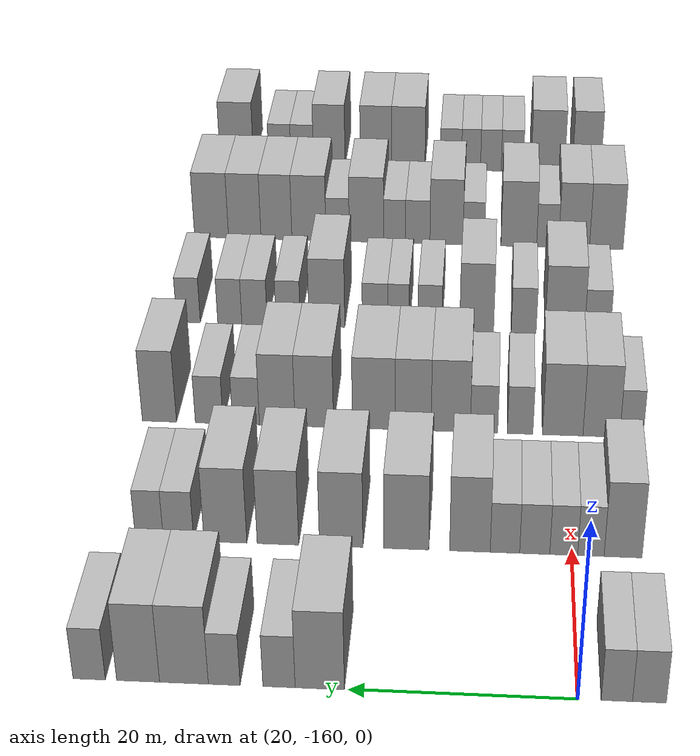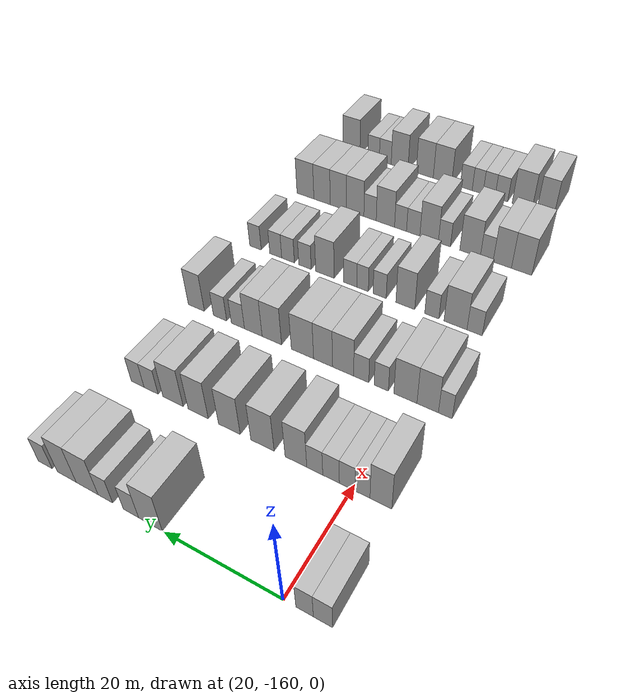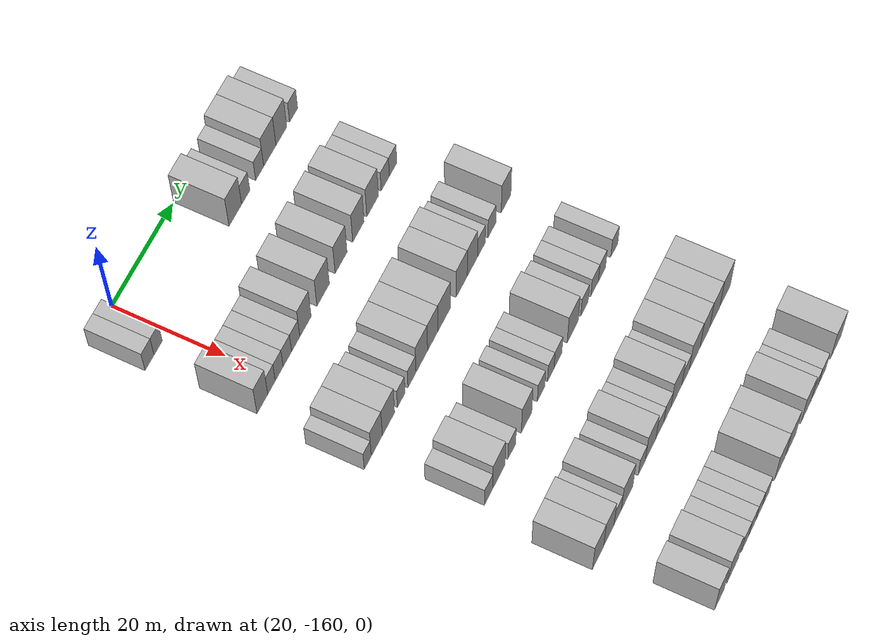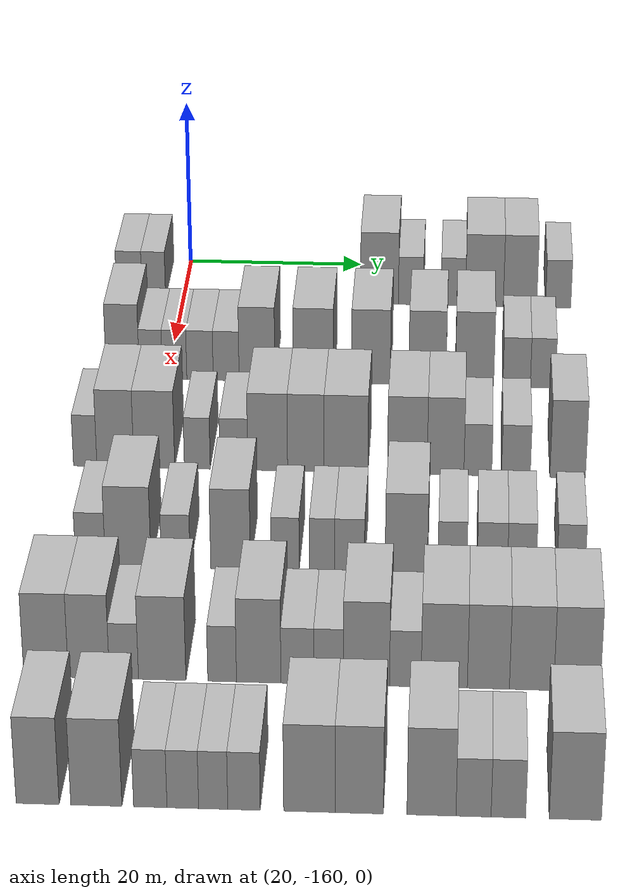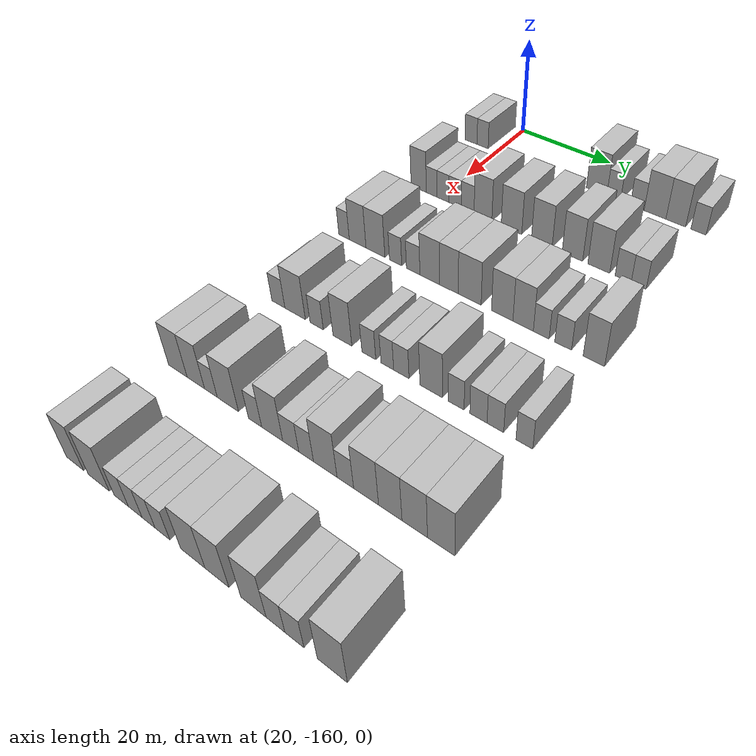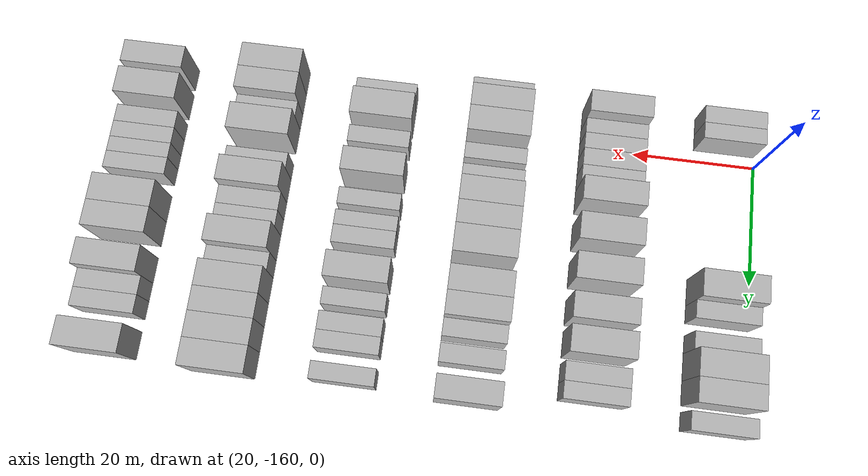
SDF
<sdf version="1.6">
 <world name="default">
  <model name="building_49">
   <static>1</static>
   <pose>25.0000 -166.1725 0 0.000000 0.000000 0.000000</pose>
   <link name="link">
    <pose>0 0 3.00 0 0 0</pose>
    <collision name="collision"><geometry><box><size>10.0000 2.9162 6.0000</size></box></geometry></collision>
    <visual name="visual">
     <cast_shadows>0</cast_shadows>
     <geometry><box><size>10.0000 2.9162 6.0000</size></box></geometry>
     <material>
      <script>
       <uri>model://HANNAS_wall/materials/scripts</uri>
       <uri>model://HANNAS_wall/materials/textures</uri>
       <name>vrc/HANNAS_wall</name>
      </script>
     </material>
    </visual>
   </link>
  </model>
  <model name="building_50">
   <static>1</static>
   <pose>25.0000 -163.3622 0 0.000000 0.000000 0.000000</pose>
   <link name="link">
    <pose>0 0 3.00 0 0 0</pose>
    <collision name="collision"><geometry><box><size>10.0000 2.7045 6.0000</size></box></geometry></collision>
    <visual name="visual">
     <cast_shadows>0</cast_shadows>
     <geometry><box><size>10.0000 2.7045 6.0000</size></box></geometry>
     <material>
      <script>
       <uri>model://HANNAS_wall/materials/scripts</uri>
       <uri>model://HANNAS_wall/materials/textures</uri>
       <name>vrc/HANNAS_wall</name>
      </script>
     </material>
    </visual>
   </link>
  </model>
  <model name="building_51">
   <static>1</static>
   <pose>25.0000 -137.5304 0 0.000000 0.000000 0.000000</pose>
   <link name="link">
    <pose>0 0 4.50 0 0 0</pose>
    <collision name="collision"><geometry><box><size>10.0000 4.3197 9.0000</size></box></geometry></collision>
    <visual name="visual">
     <cast_shadows>0</cast_shadows>
     <geometry><box><size>10.0000 4.3197 9.0000</size></box></geometry>
     <material>
      <script>
       <uri>model://HANNAS_wall/materials/scripts</uri>
       <uri>model://HANNAS_wall/materials/textures</uri>
       <name>vrc/HANNAS_wall</name>
      </script>
     </material>
    </visual>
   </link>
  </model>
  <model name="building_52">
   <static>1</static>
   <pose>25.0000 -133.9531 0 0.000000 0.000000 0.000000</pose>
   <link name="link">
    <pose>0 0 3.00 0 0 0</pose>
    <collision name="collision"><geometry><box><size>10.0000 2.8350 6.0000</size></box></geometry></collision>
    <visual name="visual">
     <cast_shadows>0</cast_shadows>
     <geometry><box><size>10.0000 2.8350 6.0000</size></box></geometry>
     <material>
      <script>
       <uri>model://HANNAS_wall/materials/scripts</uri>
       <uri>model://HANNAS_wall/materials/textures</uri>
       <name>vrc/HANNAS_wall</name>
      </script>
     </material>
    </visual>
   </link>
  </model>
  <model name="building_53">
   <static>1</static>
   <pose>25.0000 -129.1353 0 0.000000 0.000000 0.000000</pose>
   <link name="link">
    <pose>0 0 3.00 0 0 0</pose>
    <collision name="collision"><geometry><box><size>10.0000 2.8005 6.0000</size></box></geometry></collision>
    <visual name="visual">
     <cast_shadows>0</cast_shadows>
     <geometry><box><size>10.0000 2.8005 6.0000</size></box></geometry>
     <material>
      <script>
       <uri>model://HANNAS_wall/materials/scripts</uri>
       <uri>model://HANNAS_wall/materials/textures</uri>
       <name>vrc/HANNAS_wall</name>
      </script>
     </material>
    </visual>
   </link>
  </model>
  <model name="building_54">
   <static>1</static>
   <pose>25.0000 -125.5844 0 0.000000 0.000000 0.000000</pose>
   <link name="link">
    <pose>0 0 4.50 0 0 0</pose>
    <collision name="collision"><geometry><box><size>10.0000 4.3012 9.0000</size></box></geometry></collision>
    <visual name="visual">
     <cast_shadows>0</cast_shadows>
     <geometry><box><size>10.0000 4.3012 9.0000</size></box></geometry>
     <material>
      <script>
       <uri>model://HANNAS_wall/materials/scripts</uri>
       <uri>model://HANNAS_wall/materials/textures</uri>
       <name>vrc/HANNAS_wall</name>
      </script>
     </material>
    </visual>
   </link>
  </model>
  <model name="building_55">
   <static>1</static>
   <pose>25.0000 -121.5338 0 0.000000 0.000000 0.000000</pose>
   <link name="link">
    <pose>0 0 4.50 0 0 0</pose>
    <collision name="collision"><geometry><box><size>10.0000 3.8001 9.0000</size></box></geometry></collision>
    <visual name="visual">
     <cast_shadows>0</cast_shadows>
     <geometry><box><size>10.0000 3.8001 9.0000</size></box></geometry>
     <material>
      <script>
       <uri>model://HANNAS_wall/materials/scripts</uri>
       <uri>model://HANNAS_wall/materials/textures</uri>
       <name>vrc/HANNAS_wall</name>
      </script>
     </material>
    </visual>
   </link>
  </model>
  <model name="building_56">
   <static>1</static>
   <pose>25.0000 -117.2014 0 0.000000 0.000000 0.000000</pose>
   <link name="link">
    <pose>0 0 3.00 0 0 0</pose>
    <collision name="collision"><geometry><box><size>10.0000 2.8646 6.0000</size></box></geometry></collision>
    <visual name="visual">
     <cast_shadows>0</cast_shadows>
     <geometry><box><size>10.0000 2.8646 6.0000</size></box></geometry>
     <material>
      <script>
       <uri>model://HANNAS_wall/materials/scripts</uri>
       <uri>model://HANNAS_wall/materials/textures</uri>
       <name>vrc/HANNAS_wall</name>
      </script>
     </material>
    </visual>
   </link>
  </model>
  <model name="building_224">
   <static>1</static>
   <pose>44.0000 -164.8142 0 0.000000 0.000000 0.000000</pose>
   <link name="link">
    <pose>0 0 4.50 0 0 0</pose>
    <collision name="collision"><geometry><box><size>10.0000 3.6014 9.0000</size></box></geometry></collision>
    <visual name="visual">
     <cast_shadows>0</cast_shadows>
     <geometry><box><size>10.0000 3.6014 9.0000</size></box></geometry>
     <material>
      <script>
       <uri>model://HANNAS_wall/materials/scripts</uri>
       <uri>model://HANNAS_wall/materials/textures</uri>
       <name>vrc/HANNAS_wall</name>
      </script>
     </material>
    </visual>
   </link>
  </model>
  <model name="building_225">
   <static>1</static>
   <pose>44.0000 -161.7570 0 0.000000 0.000000 0.000000</pose>
   <link name="link">
    <pose>0 0 3.00 0 0 0</pose>
    <collision name="collision"><geometry><box><size>10.0000 2.5130 6.0000</size></box></geometry></collision>
    <visual name="visual">
     <cast_shadows>0</cast_shadows>
     <geometry><box><size>10.0000 2.5130 6.0000</size></box></geometry>
     <material>
      <script>
       <uri>model://HANNAS_wall/materials/scripts</uri>
       <uri>model://HANNAS_wall/materials/textures</uri>
       <name>vrc/HANNAS_wall</name>
      </script>
     </material>
    </visual>
   </link>
  </model>
  <model name="building_226">
   <static>1</static>
   <pose>44.0000 -159.1710 0 0.000000 0.000000 0.000000</pose>
   <link name="link">
    <pose>0 0 3.00 0 0 0</pose>
    <collision name="collision"><geometry><box><size>10.0000 2.6589 6.0000</size></box></geometry></collision>
    <visual name="visual">
     <cast_shadows>0</cast_shadows>
     <geometry><box><size>10.0000 2.6589 6.0000</size></box></geometry>
     <material>
      <script>
       <uri>model://HANNAS_wall/materials/scripts</uri>
       <uri>model://HANNAS_wall/materials/textures</uri>
       <name>vrc/HANNAS_wall</name>
      </script>
     </material>
    </visual>
   </link>
  </model>
  <model name="building_227">
   <static>1</static>
   <pose>44.0000 -156.4056 0 0.000000 0.000000 0.000000</pose>
   <link name="link">
    <pose>0 0 3.00 0 0 0</pose>
    <collision name="collision"><geometry><box><size>10.0000 2.8719 6.0000</size></box></geometry></collision>
    <visual name="visual">
     <cast_shadows>0</cast_shadows>
     <geometry><box><size>10.0000 2.8719 6.0000</size></box></geometry>
     <material>
      <script>
       <uri>model://HANNAS_wall/materials/scripts</uri>
       <uri>model://HANNAS_wall/materials/textures</uri>
       <name>vrc/HANNAS_wall</name>
      </script>
     </material>
    </visual>
   </link>
  </model>
  <model name="building_228">
   <static>1</static>
   <pose>44.0000 -153.5624 0 0.000000 0.000000 0.000000</pose>
   <link name="link">
    <pose>0 0 3.00 0 0 0</pose>
    <collision name="collision"><geometry><box><size>10.0000 2.8143 6.0000</size></box></geometry></collision>
    <visual name="visual">
     <cast_shadows>0</cast_shadows>
     <geometry><box><size>10.0000 2.8143 6.0000</size></box></geometry>
     <material>
      <script>
       <uri>model://HANNAS_wall/materials/scripts</uri>
       <uri>model://HANNAS_wall/materials/textures</uri>
       <name>vrc/HANNAS_wall</name>
      </script>
     </material>
    </visual>
   </link>
  </model>
  <model name="building_229">
   <static>1</static>
   <pose>44.0000 -150.2146 0 0.000000 0.000000 0.000000</pose>
   <link name="link">
    <pose>0 0 4.50 0 0 0</pose>
    <collision name="collision"><geometry><box><size>10.0000 3.8813 9.0000</size></box></geometry></collision>
    <visual name="visual">
     <cast_shadows>0</cast_shadows>
     <geometry><box><size>10.0000 3.8813 9.0000</size></box></geometry>
     <material>
      <script>
       <uri>model://HANNAS_wall/materials/scripts</uri>
       <uri>model://HANNAS_wall/materials/textures</uri>
       <name>vrc/HANNAS_wall</name>
      </script>
     </material>
    </visual>
   </link>
  </model>
  <model name="building_230">
   <static>1</static>
   <pose>44.0000 -144.1086 0 0.000000 0.000000 0.000000</pose>
   <link name="link">
    <pose>0 0 4.50 0 0 0</pose>
    <collision name="collision"><geometry><box><size>10.0000 4.3307 9.0000</size></box></geometry></collision>
    <visual name="visual">
     <cast_shadows>0</cast_shadows>
     <geometry><box><size>10.0000 4.3307 9.0000</size></box></geometry>
     <material>
      <script>
       <uri>model://HANNAS_wall/materials/scripts</uri>
       <uri>model://HANNAS_wall/materials/textures</uri>
       <name>vrc/HANNAS_wall</name>
      </script>
     </material>
    </visual>
   </link>
  </model>
  <model name="building_231">
   <static>1</static>
   <pose>44.0000 -137.8483 0 0.000000 0.000000 0.000000</pose>
   <link name="link">
    <pose>0 0 4.50 0 0 0</pose>
    <collision name="collision"><geometry><box><size>10.0000 4.1900 9.0000</size></box></geometry></collision>
    <visual name="visual">
     <cast_shadows>0</cast_shadows>
     <geometry><box><size>10.0000 4.1900 9.0000</size></box></geometry>
     <material>
      <script>
       <uri>model://HANNAS_wall/materials/scripts</uri>
       <uri>model://HANNAS_wall/materials/textures</uri>
       <name>vrc/HANNAS_wall</name>
      </script>
     </material>
    </visual>
   </link>
  </model>
  <model name="building_232">
   <static>1</static>
   <pose>44.0000 -131.7447 0 0.000000 0.000000 0.000000</pose>
   <link name="link">
    <pose>0 0 4.50 0 0 0</pose>
    <collision name="collision"><geometry><box><size>10.0000 4.0170 9.0000</size></box></geometry></collision>
    <visual name="visual">
     <cast_shadows>0</cast_shadows>
     <geometry><box><size>10.0000 4.0170 9.0000</size></box></geometry>
     <material>
      <script>
       <uri>model://HANNAS_wall/materials/scripts</uri>
       <uri>model://HANNAS_wall/materials/textures</uri>
       <name>vrc/HANNAS_wall</name>
      </script>
     </material>
    </visual>
   </link>
  </model>
  <model name="building_233">
   <static>1</static>
   <pose>44.0000 -126.6595 0 0.000000 0.000000 0.000000</pose>
   <link name="link">
    <pose>0 0 4.50 0 0 0</pose>
    <collision name="collision"><geometry><box><size>10.0000 4.1534 9.0000</size></box></geometry></collision>
    <visual name="visual">
     <cast_shadows>0</cast_shadows>
     <geometry><box><size>10.0000 4.1534 9.0000</size></box></geometry>
     <material>
      <script>
       <uri>model://HANNAS_wall/materials/scripts</uri>
       <uri>model://HANNAS_wall/materials/textures</uri>
       <name>vrc/HANNAS_wall</name>
      </script>
     </material>
    </visual>
   </link>
  </model>
  <model name="building_234">
   <static>1</static>
   <pose>44.0000 -122.1058 0 0.000000 0.000000 0.000000</pose>
   <link name="link">
    <pose>0 0 3.00 0 0 0</pose>
    <collision name="collision"><geometry><box><size>10.0000 2.9541 6.0000</size></box></geometry></collision>
    <visual name="visual">
     <cast_shadows>0</cast_shadows>
     <geometry><box><size>10.0000 2.9541 6.0000</size></box></geometry>
     <material>
      <script>
       <uri>model://HANNAS_wall/materials/scripts</uri>
       <uri>model://HANNAS_wall/materials/textures</uri>
       <name>vrc/HANNAS_wall</name>
      </script>
     </material>
    </visual>
   </link>
  </model>
  <model name="building_235">
   <static>1</static>
   <pose>44.0000 -119.2724 0 0.000000 0.000000 0.000000</pose>
   <link name="link">
    <pose>0 0 3.00 0 0 0</pose>
    <collision name="collision"><geometry><box><size>10.0000 2.7127 6.0000</size></box></geometry></collision>
    <visual name="visual">
     <cast_shadows>0</cast_shadows>
     <geometry><box><size>10.0000 2.7127 6.0000</size></box></geometry>
     <material>
      <script>
       <uri>model://HANNAS_wall/materials/scripts</uri>
       <uri>model://HANNAS_wall/materials/textures</uri>
       <name>vrc/HANNAS_wall</name>
      </script>
     </material>
    </visual>
   </link>
  </model>
  <model name="building_401">
   <static>1</static>
   <pose>63.0000 -166.5983 0 0.000000 0.000000 0.000000</pose>
   <link name="link">
    <pose>0 0 3.00 0 0 0</pose>
    <collision name="collision"><geometry><box><size>10.0000 2.4180 6.0000</size></box></geometry></collision>
    <visual name="visual">
     <cast_shadows>0</cast_shadows>
     <geometry><box><size>10.0000 2.4180 6.0000</size></box></geometry>
     <material>
      <script>
       <uri>model://HANNAS_wall/materials/scripts</uri>
       <uri>model://HANNAS_wall/materials/textures</uri>
       <name>vrc/HANNAS_wall</name>
      </script>
     </material>
    </visual>
   </link>
  </model>
  <model name="building_402">
   <static>1</static>
   <pose>63.0000 -163.4786 0 0.000000 0.000000 0.000000</pose>
   <link name="link">
    <pose>0 0 4.50 0 0 0</pose>
    <collision name="collision"><geometry><box><size>10.0000 3.8213 9.0000</size></box></geometry></collision>
    <visual name="visual">
     <cast_shadows>0</cast_shadows>
     <geometry><box><size>10.0000 3.8213 9.0000</size></box></geometry>
     <material>
      <script>
       <uri>model://HANNAS_wall/materials/scripts</uri>
       <uri>model://HANNAS_wall/materials/textures</uri>
       <name>vrc/HANNAS_wall</name>
      </script>
     </material>
    </visual>
   </link>
  </model>
  <model name="building_403">
   <static>1</static>
   <pose>63.0000 -159.4638 0 0.000000 0.000000 0.000000</pose>
   <link name="link">
    <pose>0 0 4.50 0 0 0</pose>
    <collision name="collision"><geometry><box><size>10.0000 4.2082 9.0000</size></box></geometry></collision>
    <visual name="visual">
     <cast_shadows>0</cast_shadows>
     <geometry><box><size>10.0000 4.2082 9.0000</size></box></geometry>
     <material>
      <script>
       <uri>model://HANNAS_wall/materials/scripts</uri>
       <uri>model://HANNAS_wall/materials/textures</uri>
       <name>vrc/HANNAS_wall</name>
      </script>
     </material>
    </visual>
   </link>
  </model>
  <model name="building_404">
   <static>1</static>
   <pose>63.0000 -155.0283 0 0.000000 0.000000 0.000000</pose>
   <link name="link">
    <pose>0 0 3.00 0 0 0</pose>
    <collision name="collision"><geometry><box><size>10.0000 2.6627 6.0000</size></box></geometry></collision>
    <visual name="visual">
     <cast_shadows>0</cast_shadows>
     <geometry><box><size>10.0000 2.6627 6.0000</size></box></geometry>
     <material>
      <script>
       <uri>model://HANNAS_wall/materials/scripts</uri>
       <uri>model://HANNAS_wall/materials/textures</uri>
       <name>vrc/HANNAS_wall</name>
      </script>
     </material>
    </visual>
   </link>
  </model>
  <model name="building_405">
   <static>1</static>
   <pose>63.0000 -151.2662 0 0.000000 0.000000 0.000000</pose>
   <link name="link">
    <pose>0 0 3.00 0 0 0</pose>
    <collision name="collision"><geometry><box><size>10.0000 2.8615 6.0000</size></box></geometry></collision>
    <visual name="visual">
     <cast_shadows>0</cast_shadows>
     <geometry><box><size>10.0000 2.8615 6.0000</size></box></geometry>
     <material>
      <script>
       <uri>model://HANNAS_wall/materials/scripts</uri>
       <uri>model://HANNAS_wall/materials/textures</uri>
       <name>vrc/HANNAS_wall</name>
      </script>
     </material>
    </visual>
   </link>
  </model>
  <model name="building_406">
   <static>1</static>
   <pose>63.0000 -147.7913 0 0.000000 0.000000 0.000000</pose>
   <link name="link">
    <pose>0 0 4.50 0 0 0</pose>
    <collision name="collision"><geometry><box><size>10.0000 4.0884 9.0000</size></box></geometry></collision>
    <visual name="visual">
     <cast_shadows>0</cast_shadows>
     <geometry><box><size>10.0000 4.0884 9.0000</size></box></geometry>
     <material>
      <script>
       <uri>model://HANNAS_wall/materials/scripts</uri>
       <uri>model://HANNAS_wall/materials/textures</uri>
       <name>vrc/HANNAS_wall</name>
      </script>
     </material>
    </visual>
   </link>
  </model>
  <model name="building_407">
   <static>1</static>
   <pose>63.0000 -143.8669 0 0.000000 0.000000 0.000000</pose>
   <link name="link">
    <pose>0 0 4.50 0 0 0</pose>
    <collision name="collision"><geometry><box><size>10.0000 3.7604 9.0000</size></box></geometry></collision>
    <visual name="visual">
     <cast_shadows>0</cast_shadows>
     <geometry><box><size>10.0000 3.7604 9.0000</size></box></geometry>
     <material>
      <script>
       <uri>model://HANNAS_wall/materials/scripts</uri>
       <uri>model://HANNAS_wall/materials/textures</uri>
       <name>vrc/HANNAS_wall</name>
      </script>
     </material>
    </visual>
   </link>
  </model>
  <model name="building_408">
   <static>1</static>
   <pose>63.0000 -139.7375 0 0.000000 0.000000 0.000000</pose>
   <link name="link">
    <pose>0 0 4.50 0 0 0</pose>
    <collision name="collision"><geometry><box><size>10.0000 4.4983 9.0000</size></box></geometry></collision>
    <visual name="visual">
     <cast_shadows>0</cast_shadows>
     <geometry><box><size>10.0000 4.4983 9.0000</size></box></geometry>
     <material>
      <script>
       <uri>model://HANNAS_wall/materials/scripts</uri>
       <uri>model://HANNAS_wall/materials/textures</uri>
       <name>vrc/HANNAS_wall</name>
      </script>
     </material>
    </visual>
   </link>
  </model>
  <model name="building_409">
   <static>1</static>
   <pose>63.0000 -133.4622 0 0.000000 0.000000 0.000000</pose>
   <link name="link">
    <pose>0 0 4.50 0 0 0</pose>
    <collision name="collision"><geometry><box><size>10.0000 4.0524 9.0000</size></box></geometry></collision>
    <visual name="visual">
     <cast_shadows>0</cast_shadows>
     <geometry><box><size>10.0000 4.0524 9.0000</size></box></geometry>
     <material>
      <script>
       <uri>model://HANNAS_wall/materials/scripts</uri>
       <uri>model://HANNAS_wall/materials/textures</uri>
       <name>vrc/HANNAS_wall</name>
      </script>
     </material>
    </visual>
   </link>
  </model>
  <model name="building_410">
   <static>1</static>
   <pose>63.0000 -129.5558 0 0.000000 0.000000 0.000000</pose>
   <link name="link">
    <pose>0 0 4.50 0 0 0</pose>
    <collision name="collision"><geometry><box><size>10.0000 3.7604 9.0000</size></box></geometry></collision>
    <visual name="visual">
     <cast_shadows>0</cast_shadows>
     <geometry><box><size>10.0000 3.7604 9.0000</size></box></geometry>
     <material>
      <script>
       <uri>model://HANNAS_wall/materials/scripts</uri>
       <uri>model://HANNAS_wall/materials/textures</uri>
       <name>vrc/HANNAS_wall</name>
      </script>
     </material>
    </visual>
   </link>
  </model>
  <model name="building_411">
   <static>1</static>
   <pose>63.0000 -126.2529 0 0.000000 0.000000 0.000000</pose>
   <link name="link">
    <pose>0 0 3.00 0 0 0</pose>
    <collision name="collision"><geometry><box><size>10.0000 2.8453 6.0000</size></box></geometry></collision>
    <visual name="visual">
     <cast_shadows>0</cast_shadows>
     <geometry><box><size>10.0000 2.8453 6.0000</size></box></geometry>
     <material>
      <script>
       <uri>model://HANNAS_wall/materials/scripts</uri>
       <uri>model://HANNAS_wall/materials/textures</uri>
       <name>vrc/HANNAS_wall</name>
      </script>
     </material>
    </visual>
   </link>
  </model>
  <model name="building_412">
   <static>1</static>
   <pose>63.0000 -122.3614 0 0.000000 0.000000 0.000000</pose>
   <link name="link">
    <pose>0 0 3.00 0 0 0</pose>
    <collision name="collision"><geometry><box><size>10.0000 2.9379 6.0000</size></box></geometry></collision>
    <visual name="visual">
     <cast_shadows>0</cast_shadows>
     <geometry><box><size>10.0000 2.9379 6.0000</size></box></geometry>
     <material>
      <script>
       <uri>model://HANNAS_wall/materials/scripts</uri>
       <uri>model://HANNAS_wall/materials/textures</uri>
       <name>vrc/HANNAS_wall</name>
      </script>
     </material>
    </visual>
   </link>
  </model>
  <model name="building_413">
   <static>1</static>
   <pose>63.0000 -117.0783 0 0.000000 0.000000 0.000000</pose>
   <link name="link">
    <pose>0 0 4.50 0 0 0</pose>
    <collision name="collision"><geometry><box><size>10.0000 3.6282 9.0000</size></box></geometry></collision>
    <visual name="visual">
     <cast_shadows>0</cast_shadows>
     <geometry><box><size>10.0000 3.6282 9.0000</size></box></geometry>
     <material>
      <script>
       <uri>model://HANNAS_wall/materials/scripts</uri>
       <uri>model://HANNAS_wall/materials/textures</uri>
       <name>vrc/HANNAS_wall</name>
      </script>
     </material>
    </visual>
   </link>
  </model>
  <model name="building_592">
   <static>1</static>
   <pose>82.0000 -163.7565 0 0.000000 0.000000 0.000000</pose>
   <link name="link">
    <pose>0 0 3.00 0 0 0</pose>
    <collision name="collision"><geometry><box><size>10.0000 2.8979 6.0000</size></box></geometry></collision>
    <visual name="visual">
     <cast_shadows>0</cast_shadows>
     <geometry><box><size>10.0000 2.8979 6.0000</size></box></geometry>
     <material>
      <script>
       <uri>model://HANNAS_wall/materials/scripts</uri>
       <uri>model://HANNAS_wall/materials/textures</uri>
       <name>vrc/HANNAS_wall</name>
      </script>
     </material>
    </visual>
   </link>
  </model>
  <model name="building_593">
   <static>1</static>
   <pose>82.0000 -160.0811 0 0.000000 0.000000 0.000000</pose>
   <link name="link">
    <pose>0 0 4.50 0 0 0</pose>
    <collision name="collision"><geometry><box><size>10.0000 4.4529 9.0000</size></box></geometry></collision>
    <visual name="visual">
     <cast_shadows>0</cast_shadows>
     <geometry><box><size>10.0000 4.4529 9.0000</size></box></geometry>
     <material>
      <script>
       <uri>model://HANNAS_wall/materials/scripts</uri>
       <uri>model://HANNAS_wall/materials/textures</uri>
       <name>vrc/HANNAS_wall</name>
      </script>
     </material>
    </visual>
   </link>
  </model>
  <model name="building_594">
   <static>1</static>
   <pose>82.0000 -155.4519 0 0.000000 0.000000 0.000000</pose>
   <link name="link">
    <pose>0 0 3.00 0 0 0</pose>
    <collision name="collision"><geometry><box><size>10.0000 2.8056 6.0000</size></box></geometry></collision>
    <visual name="visual">
     <cast_shadows>0</cast_shadows>
     <geometry><box><size>10.0000 2.8056 6.0000</size></box></geometry>
     <material>
      <script>
       <uri>model://HANNAS_wall/materials/scripts</uri>
       <uri>model://HANNAS_wall/materials/textures</uri>
       <name>vrc/HANNAS_wall</name>
      </script>
     </material>
    </visual>
   </link>
  </model>
  <model name="building_595">
   <static>1</static>
   <pose>82.0000 -150.1292 0 0.000000 0.000000 0.000000</pose>
   <link name="link">
    <pose>0 0 4.50 0 0 0</pose>
    <collision name="collision"><geometry><box><size>10.0000 3.8399 9.0000</size></box></geometry></collision>
    <visual name="visual">
     <cast_shadows>0</cast_shadows>
     <geometry><box><size>10.0000 3.8399 9.0000</size></box></geometry>
     <material>
      <script>
       <uri>model://HANNAS_wall/materials/scripts</uri>
       <uri>model://HANNAS_wall/materials/textures</uri>
       <name>vrc/HANNAS_wall</name>
      </script>
     </material>
    </visual>
   </link>
  </model>
  <model name="building_596">
   <static>1</static>
   <pose>82.0000 -144.8431 0 0.000000 0.000000 0.000000</pose>
   <link name="link">
    <pose>0 0 3.00 0 0 0</pose>
    <collision name="collision"><geometry><box><size>10.0000 2.7322 6.0000</size></box></geometry></collision>
    <visual name="visual">
     <cast_shadows>0</cast_shadows>
     <geometry><box><size>10.0000 2.7322 6.0000</size></box></geometry>
     <material>
      <script>
       <uri>model://HANNAS_wall/materials/scripts</uri>
       <uri>model://HANNAS_wall/materials/textures</uri>
       <name>vrc/HANNAS_wall</name>
      </script>
     </material>
    </visual>
   </link>
  </model>
  <model name="building_597">
   <static>1</static>
   <pose>82.0000 -141.2619 0 0.000000 0.000000 0.000000</pose>
   <link name="link">
    <pose>0 0 3.00 0 0 0</pose>
    <collision name="collision"><geometry><box><size>10.0000 2.4303 6.0000</size></box></geometry></collision>
    <visual name="visual">
     <cast_shadows>0</cast_shadows>
     <geometry><box><size>10.0000 2.4303 6.0000</size></box></geometry>
     <material>
      <script>
       <uri>model://HANNAS_wall/materials/scripts</uri>
       <uri>model://HANNAS_wall/materials/textures</uri>
       <name>vrc/HANNAS_wall</name>
      </script>
     </material>
    </visual>
   </link>
  </model>
  <model name="building_598">
   <static>1</static>
   <pose>82.0000 -138.6015 0 0.000000 0.000000 0.000000</pose>
   <link name="link">
    <pose>0 0 3.00 0 0 0</pose>
    <collision name="collision"><geometry><box><size>10.0000 2.8905 6.0000</size></box></geometry></collision>
    <visual name="visual">
     <cast_shadows>0</cast_shadows>
     <geometry><box><size>10.0000 2.8905 6.0000</size></box></geometry>
     <material>
      <script>
       <uri>model://HANNAS_wall/materials/scripts</uri>
       <uri>model://HANNAS_wall/materials/textures</uri>
       <name>vrc/HANNAS_wall</name>
      </script>
     </material>
    </visual>
   </link>
  </model>
  <model name="building_599">
   <static>1</static>
   <pose>82.0000 -133.1162 0 0.000000 0.000000 0.000000</pose>
   <link name="link">
    <pose>0 0 4.50 0 0 0</pose>
    <collision name="collision"><geometry><box><size>10.0000 4.0800 9.0000</size></box></geometry></collision>
    <visual name="visual">
     <cast_shadows>0</cast_shadows>
     <geometry><box><size>10.0000 4.0800 9.0000</size></box></geometry>
     <material>
      <script>
       <uri>model://HANNAS_wall/materials/scripts</uri>
       <uri>model://HANNAS_wall/materials/textures</uri>
       <name>vrc/HANNAS_wall</name>
      </script>
     </material>
    </visual>
   </link>
  </model>
  <model name="building_600">
   <static>1</static>
   <pose>82.0000 -128.6819 0 0.000000 0.000000 0.000000</pose>
   <link name="link">
    <pose>0 0 3.00 0 0 0</pose>
    <collision name="collision"><geometry><box><size>10.0000 2.7886 6.0000</size></box></geometry></collision>
    <visual name="visual">
     <cast_shadows>0</cast_shadows>
     <geometry><box><size>10.0000 2.7886 6.0000</size></box></geometry>
     <material>
      <script>
       <uri>model://HANNAS_wall/materials/scripts</uri>
       <uri>model://HANNAS_wall/materials/textures</uri>
       <name>vrc/HANNAS_wall</name>
      </script>
     </material>
    </visual>
   </link>
  </model>
  <model name="building_601">
   <static>1</static>
   <pose>82.0000 -124.8327 0 0.000000 0.000000 0.000000</pose>
   <link name="link">
    <pose>0 0 3.00 0 0 0</pose>
    <collision name="collision"><geometry><box><size>10.0000 2.9097 6.0000</size></box></geometry></collision>
    <visual name="visual">
     <cast_shadows>0</cast_shadows>
     <geometry><box><size>10.0000 2.9097 6.0000</size></box></geometry>
     <material>
      <script>
       <uri>model://HANNAS_wall/materials/scripts</uri>
       <uri>model://HANNAS_wall/materials/textures</uri>
       <name>vrc/HANNAS_wall</name>
      </script>
     </material>
    </visual>
   </link>
  </model>
  <model name="building_602">
   <static>1</static>
   <pose>82.0000 -121.9949 0 0.000000 0.000000 0.000000</pose>
   <link name="link">
    <pose>0 0 3.00 0 0 0</pose>
    <collision name="collision"><geometry><box><size>10.0000 2.7659 6.0000</size></box></geometry></collision>
    <visual name="visual">
     <cast_shadows>0</cast_shadows>
     <geometry><box><size>10.0000 2.7659 6.0000</size></box></geometry>
     <material>
      <script>
       <uri>model://HANNAS_wall/materials/scripts</uri>
       <uri>model://HANNAS_wall/materials/textures</uri>
       <name>vrc/HANNAS_wall</name>
      </script>
     </material>
    </visual>
   </link>
  </model>
  <model name="building_603">
   <static>1</static>
   <pose>82.0000 -117.2562 0 0.000000 0.000000 0.000000</pose>
   <link name="link">
    <pose>0 0 3.00 0 0 0</pose>
    <collision name="collision"><geometry><box><size>10.0000 2.7114 6.0000</size></box></geometry></collision>
    <visual name="visual">
     <cast_shadows>0</cast_shadows>
     <geometry><box><size>10.0000 2.7114 6.0000</size></box></geometry>
     <material>
      <script>
       <uri>model://HANNAS_wall/materials/scripts</uri>
       <uri>model://HANNAS_wall/materials/textures</uri>
       <name>vrc/HANNAS_wall</name>
      </script>
     </material>
    </visual>
   </link>
  </model>
  <model name="building_774">
   <static>1</static>
   <pose>101.0000 -165.5340 0 0.000000 0.000000 0.000000</pose>
   <link name="link">
    <pose>0 0 4.50 0 0 0</pose>
    <collision name="collision"><geometry><box><size>10.0000 4.0905 9.0000</size></box></geometry></collision>
    <visual name="visual">
     <cast_shadows>0</cast_shadows>
     <geometry><box><size>10.0000 4.0905 9.0000</size></box></geometry>
     <material>
      <script>
       <uri>model://HANNAS_wall/materials/scripts</uri>
       <uri>model://HANNAS_wall/materials/textures</uri>
       <name>vrc/HANNAS_wall</name>
      </script>
     </material>
    </visual>
   </link>
  </model>
  <model name="building_775">
   <static>1</static>
   <pose>101.0000 -161.6088 0 0.000000 0.000000 0.000000</pose>
   <link name="link">
    <pose>0 0 4.50 0 0 0</pose>
    <collision name="collision"><geometry><box><size>10.0000 3.7599 9.0000</size></box></geometry></collision>
    <visual name="visual">
     <cast_shadows>0</cast_shadows>
     <geometry><box><size>10.0000 3.7599 9.0000</size></box></geometry>
     <material>
      <script>
       <uri>model://HANNAS_wall/materials/scripts</uri>
       <uri>model://HANNAS_wall/materials/textures</uri>
       <name>vrc/HANNAS_wall</name>
      </script>
     </material>
    </visual>
   </link>
  </model>
  <model name="building_776">
   <static>1</static>
   <pose>101.0000 -158.3983 0 0.000000 0.000000 0.000000</pose>
   <link name="link">
    <pose>0 0 3.00 0 0 0</pose>
    <collision name="collision"><geometry><box><size>10.0000 2.6610 6.0000</size></box></geometry></collision>
    <visual name="visual">
     <cast_shadows>0</cast_shadows>
     <geometry><box><size>10.0000 2.6610 6.0000</size></box></geometry>
     <material>
      <script>
       <uri>model://HANNAS_wall/materials/scripts</uri>
       <uri>model://HANNAS_wall/materials/textures</uri>
       <name>vrc/HANNAS_wall</name>
      </script>
     </material>
    </visual>
   </link>
  </model>
  <model name="building_777">
   <static>1</static>
   <pose>101.0000 -154.8997 0 0.000000 0.000000 0.000000</pose>
   <link name="link">
    <pose>0 0 4.50 0 0 0</pose>
    <collision name="collision"><geometry><box><size>10.0000 4.3362 9.0000</size></box></geometry></collision>
    <visual name="visual">
     <cast_shadows>0</cast_shadows>
     <geometry><box><size>10.0000 4.3362 9.0000</size></box></geometry>
     <material>
      <script>
       <uri>model://HANNAS_wall/materials/scripts</uri>
       <uri>model://HANNAS_wall/materials/textures</uri>
       <name>vrc/HANNAS_wall</name>
      </script>
     </material>
    </visual>
   </link>
  </model>
  <model name="building_778">
   <static>1</static>
   <pose>101.0000 -149.4220 0 0.000000 0.000000 0.000000</pose>
   <link name="link">
    <pose>0 0 3.00 0 0 0</pose>
    <collision name="collision"><geometry><box><size>10.0000 2.6194 6.0000</size></box></geometry></collision>
    <visual name="visual">
     <cast_shadows>0</cast_shadows>
     <geometry><box><size>10.0000 2.6194 6.0000</size></box></geometry>
     <material>
      <script>
       <uri>model://HANNAS_wall/materials/scripts</uri>
       <uri>model://HANNAS_wall/materials/textures</uri>
       <name>vrc/HANNAS_wall</name>
      </script>
     </material>
    </visual>
   </link>
  </model>
  <model name="building_779">
   <static>1</static>
   <pose>101.0000 -146.0882 0 0.000000 0.000000 0.000000</pose>
   <link name="link">
    <pose>0 0 4.50 0 0 0</pose>
    <collision name="collision"><geometry><box><size>10.0000 4.0481 9.0000</size></box></geometry></collision>
    <visual name="visual">
     <cast_shadows>0</cast_shadows>
     <geometry><box><size>10.0000 4.0481 9.0000</size></box></geometry>
     <material>
      <script>
       <uri>model://HANNAS_wall/materials/scripts</uri>
       <uri>model://HANNAS_wall/materials/textures</uri>
       <name>vrc/HANNAS_wall</name>
      </script>
     </material>
    </visual>
   </link>
  </model>
  <model name="building_780">
   <static>1</static>
   <pose>101.0000 -142.5710 0 0.000000 0.000000 0.000000</pose>
   <link name="link">
    <pose>0 0 3.00 0 0 0</pose>
    <collision name="collision"><geometry><box><size>10.0000 2.9862 6.0000</size></box></geometry></collision>
    <visual name="visual">
     <cast_shadows>0</cast_shadows>
     <geometry><box><size>10.0000 2.9862 6.0000</size></box></geometry>
     <material>
      <script>
       <uri>model://HANNAS_wall/materials/scripts</uri>
       <uri>model://HANNAS_wall/materials/textures</uri>
       <name>vrc/HANNAS_wall</name>
      </script>
     </material>
    </visual>
   </link>
  </model>
  <model name="building_781">
   <static>1</static>
   <pose>101.0000 -139.7312 0 0.000000 0.000000 0.000000</pose>
   <link name="link">
    <pose>0 0 3.00 0 0 0</pose>
    <collision name="collision"><geometry><box><size>10.0000 2.6934 6.0000</size></box></geometry></collision>
    <visual name="visual">
     <cast_shadows>0</cast_shadows>
     <geometry><box><size>10.0000 2.6934 6.0000</size></box></geometry>
     <material>
      <script>
       <uri>model://HANNAS_wall/materials/scripts</uri>
       <uri>model://HANNAS_wall/materials/textures</uri>
       <name>vrc/HANNAS_wall</name>
      </script>
     </material>
    </visual>
   </link>
  </model>
  <model name="building_782">
   <static>1</static>
   <pose>101.0000 -136.2819 0 0.000000 0.000000 0.000000</pose>
   <link name="link">
    <pose>0 0 4.50 0 0 0</pose>
    <collision name="collision"><geometry><box><size>10.0000 4.2053 9.0000</size></box></geometry></collision>
    <visual name="visual">
     <cast_shadows>0</cast_shadows>
     <geometry><box><size>10.0000 4.2053 9.0000</size></box></geometry>
     <material>
      <script>
       <uri>model://HANNAS_wall/materials/scripts</uri>
       <uri>model://HANNAS_wall/materials/textures</uri>
       <name>vrc/HANNAS_wall</name>
      </script>
     </material>
    </visual>
   </link>
  </model>
  <model name="building_783">
   <static>1</static>
   <pose>101.0000 -132.7468 0 0.000000 0.000000 0.000000</pose>
   <link name="link">
    <pose>0 0 3.00 0 0 0</pose>
    <collision name="collision"><geometry><box><size>10.0000 2.8650 6.0000</size></box></geometry></collision>
    <visual name="visual">
     <cast_shadows>0</cast_shadows>
     <geometry><box><size>10.0000 2.8650 6.0000</size></box></geometry>
     <material>
      <script>
       <uri>model://HANNAS_wall/materials/scripts</uri>
       <uri>model://HANNAS_wall/materials/textures</uri>
       <name>vrc/HANNAS_wall</name>
      </script>
     </material>
    </visual>
   </link>
  </model>
  <model name="building_784">
   <static>1</static>
   <pose>101.0000 -129.2176 0 0.000000 0.000000 0.000000</pose>
   <link name="link">
    <pose>0 0 4.50 0 0 0</pose>
    <collision name="collision"><geometry><box><size>10.0000 4.1933 9.0000</size></box></geometry></collision>
    <visual name="visual">
     <cast_shadows>0</cast_shadows>
     <geometry><box><size>10.0000 4.1933 9.0000</size></box></geometry>
     <material>
      <script>
       <uri>model://HANNAS_wall/materials/scripts</uri>
       <uri>model://HANNAS_wall/materials/textures</uri>
       <name>vrc/HANNAS_wall</name>
      </script>
     </material>
    </visual>
   </link>
  </model>
  <model name="building_785">
   <static>1</static>
   <pose>101.0000 -125.2135 0 0.000000 0.000000 0.000000</pose>
   <link name="link">
    <pose>0 0 4.50 0 0 0</pose>
    <collision name="collision"><geometry><box><size>10.0000 3.8149 9.0000</size></box></geometry></collision>
    <visual name="visual">
     <cast_shadows>0</cast_shadows>
     <geometry><box><size>10.0000 3.8149 9.0000</size></box></geometry>
     <material>
      <script>
       <uri>model://HANNAS_wall/materials/scripts</uri>
       <uri>model://HANNAS_wall/materials/textures</uri>
       <name>vrc/HANNAS_wall</name>
      </script>
     </material>
    </visual>
   </link>
  </model>
  <model name="building_786">
   <static>1</static>
   <pose>101.0000 -121.2998 0 0.000000 0.000000 0.000000</pose>
   <link name="link">
    <pose>0 0 4.50 0 0 0</pose>
    <collision name="collision"><geometry><box><size>10.0000 4.0125 9.0000</size></box></geometry></collision>
    <visual name="visual">
     <cast_shadows>0</cast_shadows>
     <geometry><box><size>10.0000 4.0125 9.0000</size></box></geometry>
     <material>
      <script>
       <uri>model://HANNAS_wall/materials/scripts</uri>
       <uri>model://HANNAS_wall/materials/textures</uri>
       <name>vrc/HANNAS_wall</name>
      </script>
     </material>
    </visual>
   </link>
  </model>
  <model name="building_787">
   <static>1</static>
   <pose>101.0000 -117.1962 0 0.000000 0.000000 0.000000</pose>
   <link name="link">
    <pose>0 0 4.50 0 0 0</pose>
    <collision name="collision"><geometry><box><size>10.0000 4.1947 9.0000</size></box></geometry></collision>
    <visual name="visual">
     <cast_shadows>0</cast_shadows>
     <geometry><box><size>10.0000 4.1947 9.0000</size></box></geometry>
     <material>
      <script>
       <uri>model://HANNAS_wall/materials/scripts</uri>
       <uri>model://HANNAS_wall/materials/textures</uri>
       <name>vrc/HANNAS_wall</name>
      </script>
     </material>
    </visual>
   </link>
  </model>
  <model name="building_938">
   <static>1</static>
   <pose>120.0000 -163.7118 0 0.000000 0.000000 0.000000</pose>
   <link name="link">
    <pose>0 0 4.50 0 0 0</pose>
    <collision name="collision"><geometry><box><size>10.0000 3.6948 9.0000</size></box></geometry></collision>
    <visual name="visual">
     <cast_shadows>0</cast_shadows>
     <geometry><box><size>10.0000 3.6948 9.0000</size></box></geometry>
     <material>
      <script>
       <uri>model://HANNAS_wall/materials/scripts</uri>
       <uri>model://HANNAS_wall/materials/textures</uri>
       <name>vrc/HANNAS_wall</name>
      </script>
     </material>
    </visual>
   </link>
  </model>
  <model name="building_939">
   <static>1</static>
   <pose>120.0000 -158.6710 0 0.000000 0.000000 0.000000</pose>
   <link name="link">
    <pose>0 0 4.50 0 0 0</pose>
    <collision name="collision"><geometry><box><size>10.0000 4.3869 9.0000</size></box></geometry></collision>
    <visual name="visual">
     <cast_shadows>0</cast_shadows>
     <geometry><box><size>10.0000 4.3869 9.0000</size></box></geometry>
     <material>
      <script>
       <uri>model://HANNAS_wall/materials/scripts</uri>
       <uri>model://HANNAS_wall/materials/textures</uri>
       <name>vrc/HANNAS_wall</name>
      </script>
     </material>
    </visual>
   </link>
  </model>
  <model name="building_940">
   <static>1</static>
   <pose>120.0000 -154.0468 0 0.000000 0.000000 0.000000</pose>
   <link name="link">
    <pose>0 0 3.00 0 0 0</pose>
    <collision name="collision"><geometry><box><size>10.0000 2.8613 6.0000</size></box></geometry></collision>
    <visual name="visual">
     <cast_shadows>0</cast_shadows>
     <geometry><box><size>10.0000 2.8613 6.0000</size></box></geometry>
     <material>
      <script>
       <uri>model://HANNAS_wall/materials/scripts</uri>
       <uri>model://HANNAS_wall/materials/textures</uri>
       <name>vrc/HANNAS_wall</name>
      </script>
     </material>
    </visual>
   </link>
  </model>
  <model name="building_941">
   <static>1</static>
   <pose>120.0000 -151.2611 0 0.000000 0.000000 0.000000</pose>
   <link name="link">
    <pose>0 0 3.00 0 0 0</pose>
    <collision name="collision"><geometry><box><size>10.0000 2.7101 6.0000</size></box></geometry></collision>
    <visual name="visual">
     <cast_shadows>0</cast_shadows>
     <geometry><box><size>10.0000 2.7101 6.0000</size></box></geometry>
     <material>
      <script>
       <uri>model://HANNAS_wall/materials/scripts</uri>
       <uri>model://HANNAS_wall/materials/textures</uri>
       <name>vrc/HANNAS_wall</name>
      </script>
     </material>
    </visual>
   </link>
  </model>
  <model name="building_942">
   <static>1</static>
   <pose>120.0000 -148.6622 0 0.000000 0.000000 0.000000</pose>
   <link name="link">
    <pose>0 0 3.00 0 0 0</pose>
    <collision name="collision"><geometry><box><size>10.0000 2.4878 6.0000</size></box></geometry></collision>
    <visual name="visual">
     <cast_shadows>0</cast_shadows>
     <geometry><box><size>10.0000 2.4878 6.0000</size></box></geometry>
     <material>
      <script>
       <uri>model://HANNAS_wall/materials/scripts</uri>
       <uri>model://HANNAS_wall/materials/textures</uri>
       <name>vrc/HANNAS_wall</name>
      </script>
     </material>
    </visual>
   </link>
  </model>
  <model name="building_943">
   <static>1</static>
   <pose>120.0000 -146.0307 0 0.000000 0.000000 0.000000</pose>
   <link name="link">
    <pose>0 0 3.00 0 0 0</pose>
    <collision name="collision"><geometry><box><size>10.0000 2.7753 6.0000</size></box></geometry></collision>
    <visual name="visual">
     <cast_shadows>0</cast_shadows>
     <geometry><box><size>10.0000 2.7753 6.0000</size></box></geometry>
     <material>
      <script>
       <uri>model://HANNAS_wall/materials/scripts</uri>
       <uri>model://HANNAS_wall/materials/textures</uri>
       <name>vrc/HANNAS_wall</name>
      </script>
     </material>
    </visual>
   </link>
  </model>
  <model name="building_944">
   <static>1</static>
   <pose>120.0000 -140.4551 0 0.000000 0.000000 0.000000</pose>
   <link name="link">
    <pose>0 0 4.50 0 0 0</pose>
    <collision name="collision"><geometry><box><size>10.0000 4.3760 9.0000</size></box></geometry></collision>
    <visual name="visual">
     <cast_shadows>0</cast_shadows>
     <geometry><box><size>10.0000 4.3760 9.0000</size></box></geometry>
     <material>
      <script>
       <uri>model://HANNAS_wall/materials/scripts</uri>
       <uri>model://HANNAS_wall/materials/textures</uri>
       <name>vrc/HANNAS_wall</name>
      </script>
     </material>
    </visual>
   </link>
  </model>
  <model name="building_945">
   <static>1</static>
   <pose>120.0000 -136.2054 0 0.000000 0.000000 0.000000</pose>
   <link name="link">
    <pose>0 0 4.50 0 0 0</pose>
    <collision name="collision"><geometry><box><size>10.0000 4.1234 9.0000</size></box></geometry></collision>
    <visual name="visual">
     <cast_shadows>0</cast_shadows>
     <geometry><box><size>10.0000 4.1234 9.0000</size></box></geometry>
     <material>
      <script>
       <uri>model://HANNAS_wall/materials/scripts</uri>
       <uri>model://HANNAS_wall/materials/textures</uri>
       <name>vrc/HANNAS_wall</name>
      </script>
     </material>
    </visual>
   </link>
  </model>
  <model name="building_946">
   <static>1</static>
   <pose>120.0000 -130.0624 0 0.000000 0.000000 0.000000</pose>
   <link name="link">
    <pose>0 0 4.50 0 0 0</pose>
    <collision name="collision"><geometry><box><size>10.0000 4.1627 9.0000</size></box></geometry></collision>
    <visual name="visual">
     <cast_shadows>0</cast_shadows>
     <geometry><box><size>10.0000 4.1627 9.0000</size></box></geometry>
     <material>
      <script>
       <uri>model://HANNAS_wall/materials/scripts</uri>
       <uri>model://HANNAS_wall/materials/textures</uri>
       <name>vrc/HANNAS_wall</name>
      </script>
     </material>
    </visual>
   </link>
  </model>
  <model name="building_947">
   <static>1</static>
   <pose>120.0000 -126.4922 0 0.000000 0.000000 0.000000</pose>
   <link name="link">
    <pose>0 0 3.00 0 0 0</pose>
    <collision name="collision"><geometry><box><size>10.0000 2.9777 6.0000</size></box></geometry></collision>
    <visual name="visual">
     <cast_shadows>0</cast_shadows>
     <geometry><box><size>10.0000 2.9777 6.0000</size></box></geometry>
     <material>
      <script>
       <uri>model://HANNAS_wall/materials/scripts</uri>
       <uri>model://HANNAS_wall/materials/textures</uri>
       <name>vrc/HANNAS_wall</name>
      </script>
     </material>
    </visual>
   </link>
  </model>
  <model name="building_948">
   <static>1</static>
   <pose>120.0000 -123.5357 0 0.000000 0.000000 0.000000</pose>
   <link name="link">
    <pose>0 0 3.00 0 0 0</pose>
    <collision name="collision"><geometry><box><size>10.0000 2.9353 6.0000</size></box></geometry></collision>
    <visual name="visual">
     <cast_shadows>0</cast_shadows>
     <geometry><box><size>10.0000 2.9353 6.0000</size></box></geometry>
     <material>
      <script>
       <uri>model://HANNAS_wall/materials/scripts</uri>
       <uri>model://HANNAS_wall/materials/textures</uri>
       <name>vrc/HANNAS_wall</name>
      </script>
     </material>
    </visual>
   </link>
  </model>
  <model name="building_949">
   <static>1</static>
   <pose>120.0000 -117.8616 0 0.000000 0.000000 0.000000</pose>
   <link name="link">
    <pose>0 0 4.50 0 0 0</pose>
    <collision name="collision"><geometry><box><size>10.0000 4.4128 9.0000</size></box></geometry></collision>
    <visual name="visual">
     <cast_shadows>0</cast_shadows>
     <geometry><box><size>10.0000 4.4128 9.0000</size></box></geometry>
     <material>
      <script>
       <uri>model://HANNAS_wall/materials/scripts</uri>
       <uri>model://HANNAS_wall/materials/textures</uri>
       <name>vrc/HANNAS_wall</name>
      </script>
     </material>
    </visual>
   </link>
  </model>
 </world>
</sdf>
